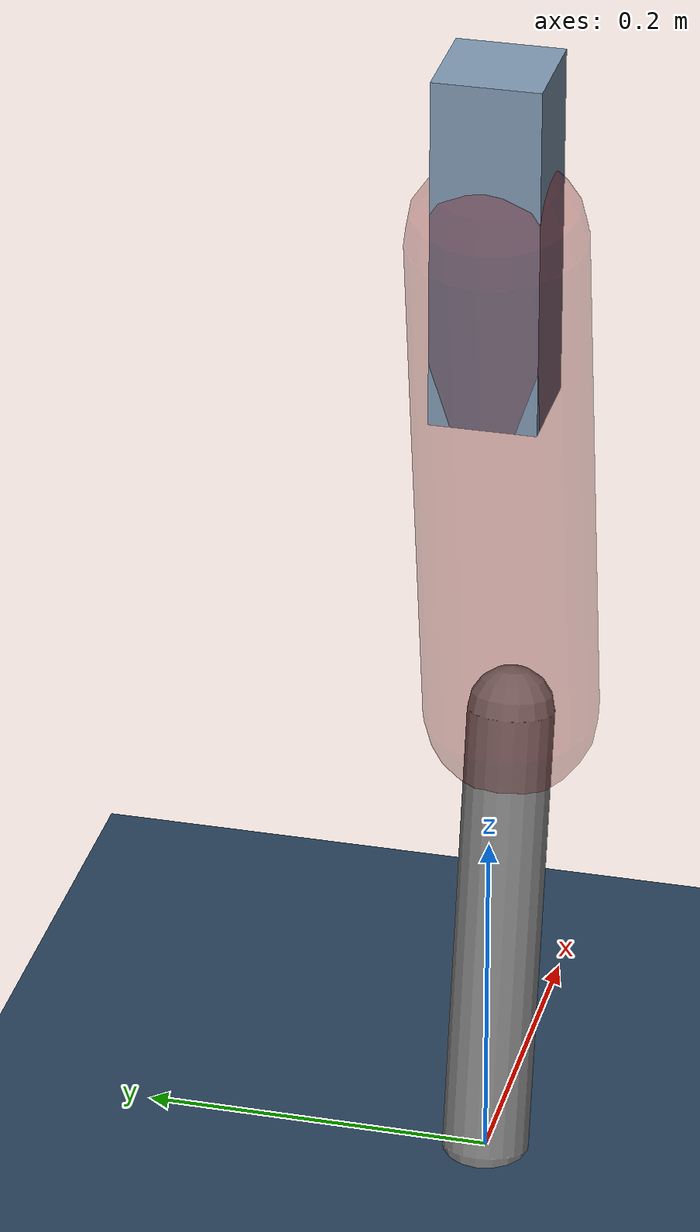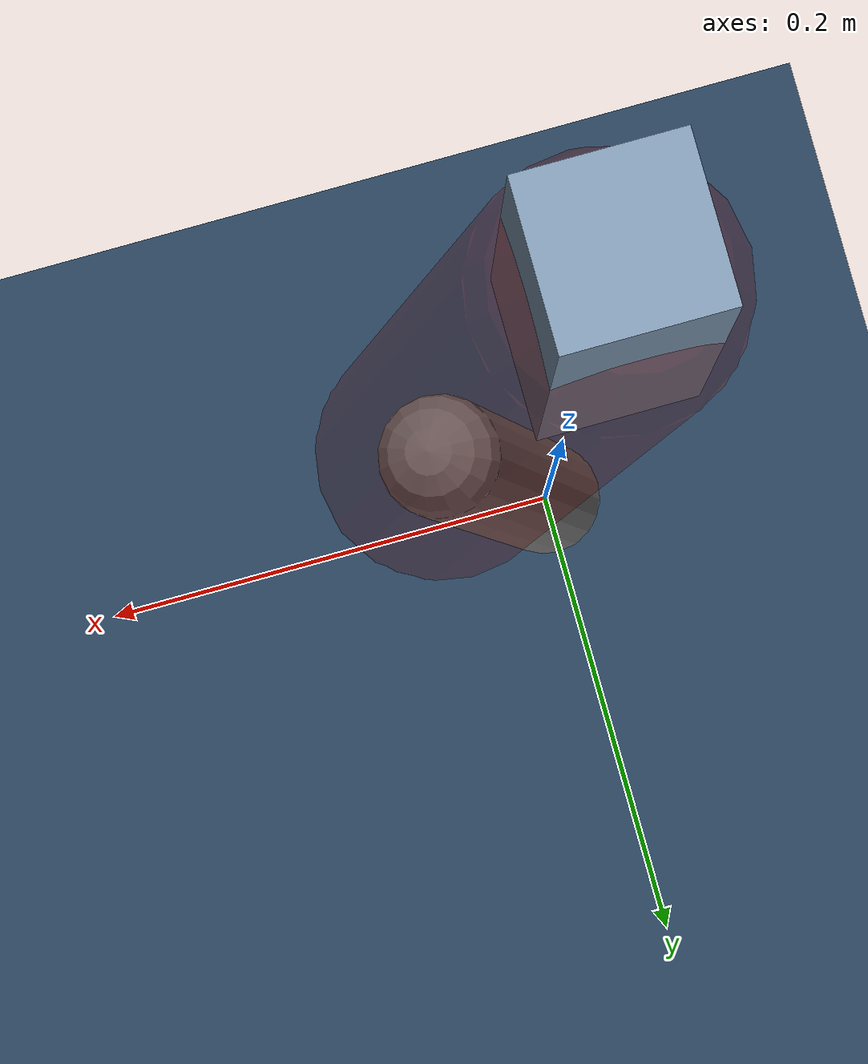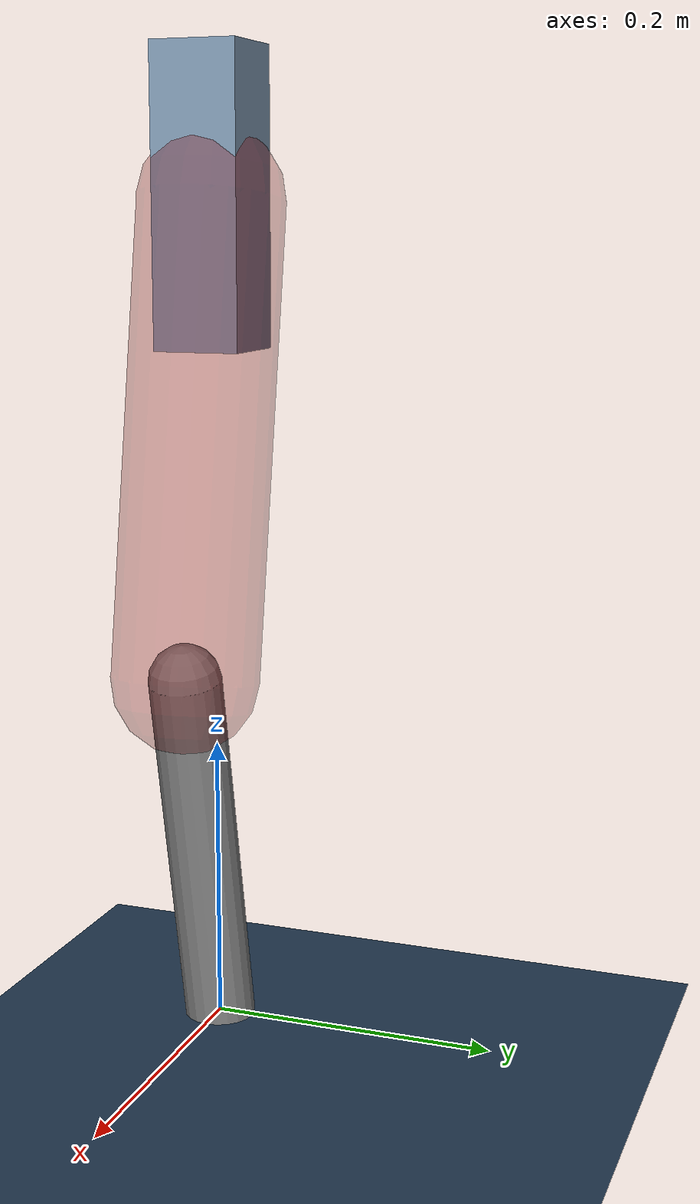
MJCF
<mujoco model="Hopper2D">
	<compiler inertiafromgeom="true" angle="radian" />
	<option timestep="0.001" integrator="implicit" cone="elliptic" solver="Newton" tolerance="1e-10" />

	<default>
		<geom contype="1" conaffinity="1" condim="3" friction="2 0.005 0.0001" solref="0.005 1" />
		<joint limited="true" damping="0.1" />
	</default>

	<asset>
		<texture name="skybox" type="skybox" builtin="gradient" rgb1=".4 .6 .8" rgb2="0 0 0" width="800" height="800" />
		<texture name="grid" type="2d" builtin="checker" rgb1=".1 .2 .3" rgb2=".2 .3 .4" width="300" height="300" mark="edge" markrgb=".2 .3 .4" />
		<material name="ground" texture="grid" texrepeat="1 1" texuniform="true" reflectance="0.1" />
		<material name="leg" rgba="0.5 0.6 0.7 1" />
	</asset>

	<worldbody>

		<geom name="floor" type="plane" size="5 5 0.25" material="ground" />

		<light directional="false" diffuse="0.8 0.8 0.8" specular="0.3 0.3 0.3" pos="0 0 2" dir="0 0 -1" />
		<light mode="targetbodycom" target="base" directional="false" diffuse="0.8 0.8 0.8" specular="0.3 0.3 0.3" pos="0 0 2" dir="0 0 -1" />

		<camera name="fixed" pos="0 -2 1" xyaxes="1 0 0 0 0 1" />
		<camera name="tracking" mode="trackcom" pos="0 -3 1" />

		<body name="root" pos="0 0 0.5751487002493096">
			<joint name="slide_x" type="slide" axis="1 0 0" range="-100 100" />
			<joint name="slide_z" type="slide" axis="0 0 1" range="0 10" />

			<body name="base" pos="0 0 0">
				<geom name="torso" type="box" size="0.03 0.03 0.1" mass="2.053" material="leg" />

				<body name="link1" pos="0 0 0" euler="0 1.4031888901181333 0">
					<joint type="hinge" axis="0 -1 0" pos="0 0 0" name="hinge1" limited="true" range="-3.14 3.14" stiffness="0" damping="0.1" />
					<geom name="thigh" type="capsule" fromto="0 0 0 0.3212390897357933 0 0" size="0.05" rgba="0.5 0 0 0.3" mass="1.0466455422866419" />

					<body name="link2" pos="0.3212390897357933 0 0" euler="0 0.37209270074767814 0">
						<joint type="hinge" axis="0 -1 0" pos="0 0 0" name="hinge2" limited="true" range="-3.14 3.14" stiffness="0" damping="0.1" />
						<geom name="shank" type="capsule" fromto="0 0 0 0.26390961051351636 0 0" size="0.025" mass="0.4539276884108131" />

					</body>
				</body>
			</body>
		</body>
	</worldbody>

	<actuator>
		<motor name="torque1" joint="hinge1" ctrlrange="-16.50222237738497 16.50222237738497" ctrllimited="true" gear="1" />
		<motor name="torque2" joint="hinge2" ctrlrange="-112.67267897875749 112.67267897875749" ctrllimited="true" gear="1" />
	</actuator>
</mujoco>
